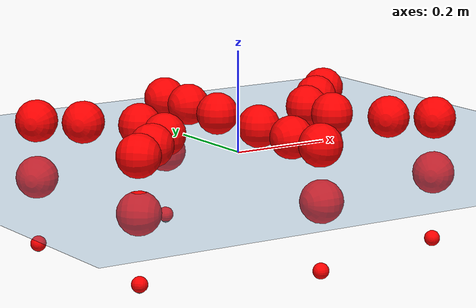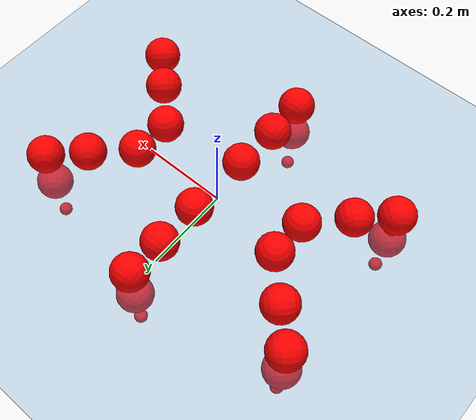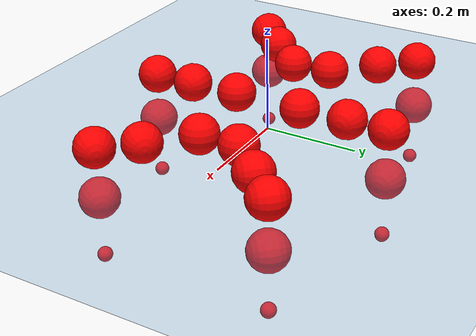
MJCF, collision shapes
<mujoco model="Golem">
  <compiler angle="radian" assetdir="assets" balanceinertia="true" inertiafromgeom="false"/>

  <option timestep="0.005" density="1.2" viscosity="2e-05"/>

  <size nkey="1"/>

  <visual>
    <quality shadowsize="8192"/>
    <map shadowclip="0.5"/>
  </visual>

  <default>
    <default class="/">
      <joint armature="0.01" damping="0.01" frictionloss="0.01"/>
      <geom contype="0" conaffinity="0" group="1" solref="-1000 -80"/>
      <site size="0.01 0.005 0.005" group="5"/>
      <general forcelimited="true" biastype="affine" gainprm="25" biasprm="0 -25 -0.5"/>
      <default class="visual">
        <geom type="mesh" group="2"/>
      </default>
      <default class="collision">
        <geom group="3"/>
      </default>
      <default class="foot">
        <geom size="0.01 0 0" condim="6" group="4" priority="1" solimp="0.015 1 0.01"/>
      </default>
      <default class="reward_collision_sphere">
        <geom group="5" rgba="1 0 0 1"/>
      </default>
    </default>
  </default>

  <asset>
    <texture type="skybox" colorspace="auto" name="//unnamed_texture_0" builtin="gradient" rgb1="0.95 0.95 0.95" rgb2="0.95 0.95 0.95" width="100" height="600"/>
    <texture type="2d" colorspace="auto" name="texplane" builtin="checker" rgb1="0.345 0.575 0.748" rgb2="0.345 0.575 0.748" markrgb="1 1 1" width="512" height="512"/>
    <material name="MatPlane" class="/" texture="texplane" texuniform="true" texrepeat="2 2" specular="0.9"/>
    <mesh name="body" class="/" file="body.stl" scale="0.001 0.001 0.001"/>
    <mesh name="coxa" class="/" file="coxa.stl" scale="0.001 0.001 0.001"/>
    <mesh name="femur" class="/" file="femur.stl" scale="0.001 0.001 0.001"/>
    <mesh name="tibia" class="/" file="tibia.stl" scale="0.001 0.001 0.001"/>
    <mesh name="tarsus" class="/" file="tarsus.stl" scale="0.001 0.001 0.001"/>
  </asset>

  <worldbody>
    <geom name="floor" class="/" size="100 100 0.125" type="plane" group="0" material="MatPlane"/>
    <light name="toplight_shadow" class="/" pos="0 0 5" dir="0.0990148 0.0990148 -0.990148" type="directional" ambient="0.04 0.04 0.04" diffuse="0.55 0.55 0.55" specular="0.12 0.12 0.12"/>
    <light name="toplight_fill" class="/" pos="0 0 5" dir="0.0990148 0.0990148 -0.990148" type="directional" castshadow="false" ambient="0.04 0.04 0.04" diffuse="0.3 0.3 0.3" specular="0.08 0.08 0.08"/>
    <body name="trunk" pos="-0.000808948 0.000222731 0.000213596" quat="1 -5.65389e-05 8.8983e-05 -0.000158883">
      <inertial pos="0.000541569 0.000921831 -0.00491129" quat="0.999934 0.00566496 0.00998478 0.000740894" mass="4.08273" diaginertia="0.029138 0.00433778 0.0110103"/>
      <joint name="//unnamed_joint_0" type="free"/>
      <geom name="//unnamed_geom_1" class="/" pos="0 0 0.0652636" quat="1 0 0 0" type="mesh" rgba="0.9 0.9 0.9 1" mesh="body"/>
      <site name="imu" class="/" pos="0.157956 0.00508652 0.10407" size="0.0103378"/>
      <camera name="track" class="/" pos="0 -1.69425 0" quat="0.707107 0.707107 0 0" mode="trackcom"/>
      <camera name="ego_camera" class="/" pos="0.16048 0 0.101974" quat="-0.5 -0.5 0.5 0.5"/>
      <body name="coxa_RR" pos="-0.219242 -0.068864 0.0643953" quat="0.382791 -0.000191609 -4.5874e-05 -0.923835">
        <inertial pos="0.000741717 -0.0001503 0.00098008" quat="0.999997 0.00145743 -0.00148836 0.00157449" mass="0.217902" diaginertia="0.0288937 0.00427341 0.0108422"/>
        <joint name="coxa_joint_RR" class="/" pos="0 0 0" axis="0.000613231 -0.0019901 -0.999998" range="-3.12613 3.18453" armature="0.0105533" damping="0.013133" frictionloss="0.0102894"/>
        <geom name="//unnamed_geom_2" class="/" type="mesh" rgba="0.2 0.2 0.2 1" mesh="coxa"/>
        <geom name="//unnamed_geom_3" class="reward_collision_sphere" size="0.0413511" pos="-0.0370338 0 0"/>
        <body name="femur_RR" pos="0.0730204 0.00245694 0.00190481" quat="0.500105 -0.499966 0.500007 0.499922">
          <inertial pos="0.000832578 0.00219321 0.00250058" quat="0.999994 -0.00138768 0.00165539 -0.00268315" mass="0.221068" diaginertia="0.029209 0.00432551 0.0113822"/>
          <joint name="femur_joint_RR" class="/" pos="0 0 0" axis="-0.0044644 0.0012512 -0.999989" range="-3.15056 3.14121" armature="0.00978972" damping="0.0087406" frictionloss="0.0116453"/>
          <geom name="//unnamed_geom_4" class="/" type="mesh" rgba="0.9 0.9 0.9 1" mesh="femur"/>
          <geom name="//unnamed_geom_5" class="reward_collision_sphere" size="0.0413511"/>
          <body name="tibia_RR" pos="0.000402023 -0.0897032 -0.00229822" quat="0.000126769 1 -0.000255416 0.000102589">
            <inertial pos="-4.84551e-05 -0.002235 0.000662145" quat="0.999998 0.000838701 -0.00152859 0.000240152" mass="0.219332" diaginertia="0.0288747 0.00436269 0.0110363"/>
            <joint name="tibia_joint_RR" class="/" pos="0 0 0" axis="0.00122409 -0.000514047 0.999999" range="-3.13898 3.14056" armature="0.0104809" damping="0.0168204" frictionloss="0.0100926"/>
            <geom name="//unnamed_geom_6" class="/" type="mesh" rgba="0.2 0.2 0.2 1" mesh="tibia"/>
            <geom name="//unnamed_geom_7" class="reward_collision_sphere" size="0.0413511"/>
            <body name="tarsus_RR" pos="0.105972 0.000672611 -1.46528e-05" quat="1 -0.000101154 -9.5029e-05 0.000120986">
              <inertial pos="0.0741999 0.00032159 -0.000393826" quat="0.500018 0.500097 0.499974 0.499911" mass="0.2258" diaginertia="0.0296525 0.00444718 0.0110399"/>
              <joint name="tarsus_joint_RR" class="/" pos="0 0 0" axis="-0.000215926 0.0035386 0.999994" range="-3.18949 3.18919" armature="0.0106073" damping="0" frictionloss="0.0104284"/>
              <geom name="//unnamed_geom_8" class="/" type="mesh" rgba="0.9 0.9 0.9 1" mesh="tarsus"/>
              <geom name="foot_1" class="foot" size="0.010627" pos="0.138259 0 0" quat="0 -0.707107 0 0.707107"/>
              <geom name="//unnamed_geom_10" class="reward_collision_sphere" size="0.0413511"/>
              <geom name="//unnamed_geom_11" class="reward_collision_sphere" size="0.0155066" pos="0.132704 0 0"/>
              <site name="foot_1" class="foot" pos="0.138259 0 0" quat="0 -0.707107 0 0.707107" size="0.0103378"/>
            </body>
          </body>
        </body>
      </body>
      <body name="coxa_RM" pos="-0.00239404 -0.113431 0.0648109" quat="0.706937 -8.4812e-05 -0.000143496 -0.707277">
        <inertial pos="0.000679841 -0.000107632 0.00110627" quat="0.999925 0.00248183 -0.000604815 -0.011965" mass="0.225001" diaginertia="0.0288984 0.00436219 0.0112408"/>
        <joint name="coxa_joint_RM" class="/" pos="0 0 0" axis="0.00287657 -0.00426027 -0.999987" stiffness="0.00033121" range="-3.12563 3.13161" armature="0.0102006" damping="0.00971841" frictionloss="0.0102995"/>
        <geom name="//unnamed_geom_12" class="/" type="mesh" rgba="0.2 0.2 0.2 1" mesh="coxa"/>
        <geom name="//unnamed_geom_13" class="reward_collision_sphere" size="0.0413511" pos="-0.0370338 0 0"/>
        <body name="femur_RM" pos="0.0728547 -0.000443265 -0.00258926" quat="0.499344 -0.500779 0.500187 0.49969">
          <inertial pos="-0.00236377 -0.000200909 -0.00252847" quat="0.999999 -0.000597143 -0.000758371 0.000798208" mass="0.225914" diaginertia="0.0286175 0.00436241 0.0109519"/>
          <joint name="femur_joint_RM" class="/" pos="0 0 0" axis="2.27207e-05 6.3611e-05 -1" range="-3.15901 3.18424" armature="0.00984975" damping="0.00949283" frictionloss="0.00926237"/>
          <geom name="//unnamed_geom_14" class="/" type="mesh" rgba="0.9 0.9 0.9 1" mesh="femur"/>
          <geom name="//unnamed_geom_15" class="reward_collision_sphere" size="0.0413511"/>
          <body name="tibia_RM" pos="-0.000884119 -0.0907835 0.00224999" quat="-7.4096e-05 1 -7.62791e-05 -0.000120562">
            <inertial pos="0.000251452 -0.00121634 -0.000391325" quat="1 -0.000137646 0.00047794 -0.000281643" mass="0.219982" diaginertia="0.0286562 0.00432264 0.0109166"/>
            <joint name="tibia_joint_RM" class="/" pos="0 0 0" axis="0.00895293 -0.00580027 0.999943" range="-3.1578 3.10013" armature="0.01056" damping="0" frictionloss="0.0100367"/>
            <geom name="//unnamed_geom_16" class="/" type="mesh" rgba="0.2 0.2 0.2 1" mesh="tibia"/>
            <geom name="//unnamed_geom_17" class="reward_collision_sphere" size="0.0413511"/>
            <body name="tarsus_RM" pos="0.106033 0.00195815 -0.00192731" quat="1 3.34109e-06 3.47e-05 -0.000114169">
              <inertial pos="0.0752862 0.000164983 0.00108017" quat="0.50518 0.496901 0.500099 0.497779" mass="0.217864" diaginertia="0.0284627 0.0043083 0.0105497"/>
              <joint name="tarsus_joint_RM" class="/" pos="0 0 0" axis="0.00387964 0.00151117 0.999991" range="-3.17927 3.09045" armature="0.0102396" damping="0.00189191" frictionloss="0.0108328"/>
              <geom name="//unnamed_geom_18" class="/" type="mesh" rgba="0.9 0.9 0.9 1" mesh="tarsus"/>
              <geom name="foot_2" class="foot" size="0.010007" pos="0.138259 0 0" quat="0 -0.707107 0 0.707107"/>
              <geom name="//unnamed_geom_20" class="reward_collision_sphere" size="0.0413511"/>
              <geom name="//unnamed_geom_21" class="reward_collision_sphere" size="0.0155066" pos="0.132704 0 0"/>
              <site name="foot_2" class="foot" pos="0.138259 0 0" quat="0 -0.707107 0 0.707107" size="0.0103378"/>
            </body>
          </body>
        </body>
      </body>
      <body name="coxa_RF" pos="0.217823 -0.0707234 0.0637468" quat="0.923904 -5.32279e-07 8.86011e-05 -0.382623">
        <inertial pos="-0.000748721 -0.00258748 -0.000384127" quat="0.999986 -0.00338162 -0.000242107 -0.00395224" mass="0.224133" diaginertia="0.0290832 0.0043354 0.0109472"/>
        <joint name="coxa_joint_RF" class="/" pos="0 0 0" axis="0.000220345 0.000243891 -1" range="-3.14028 3.15612" armature="0.0101704" damping="0" frictionloss="0.0105114"/>
        <geom name="//unnamed_geom_22" class="/" type="mesh" rgba="0.2 0.2 0.2 1" mesh="coxa"/>
        <geom name="//unnamed_geom_23" class="reward_collision_sphere" size="0.0413511" pos="-0.0370338 0 0"/>
        <body name="femur_RF" pos="0.0751919 -7.53211e-05 -0.00218186" quat="0.499911 -0.499929 0.50011 0.50005">
          <inertial pos="-3.96791e-05 3.92082e-05 0.00164528" quat="0.999987 -0.00413074 0.00100715 -0.00283471" mass="0.217442" diaginertia="0.0288331 0.00422205 0.0109576"/>
          <joint name="femur_joint_RF" class="/" pos="0 0 0" axis="9.14677e-05 -0.000328744 -1" range="-3.09444 3.1223" armature="0.0103264" damping="0.0081777" frictionloss="0.00972466"/>
          <geom name="//unnamed_geom_24" class="/" type="mesh" rgba="0.9 0.9 0.9 1" mesh="femur"/>
          <geom name="//unnamed_geom_25" class="reward_collision_sphere" size="0.0413511"/>
          <body name="tibia_RF" pos="-0.0022563 -0.09058 -0.00106085" quat="4.56245e-06 1 1.97085e-05 9.973e-06">
            <inertial pos="0.00105928 0.000478404 -0.000137328" quat="0.999925 -0.011659 -0.003352 -0.00168553" mass="0.227171" diaginertia="0.0282699 0.00436883 0.0111105"/>
            <joint name="tibia_joint_RF" class="/" pos="0 0 0" axis="0.000661262 0.00465517 0.999989" range="-3.13923 3.13619" armature="0.00997758" damping="0.00210954" frictionloss="0.0100759"/>
            <geom name="//unnamed_geom_26" class="/" type="mesh" rgba="0.2 0.2 0.2 1" mesh="tibia"/>
            <geom name="//unnamed_geom_27" class="reward_collision_sphere" size="0.0413511"/>
            <body name="tarsus_RF" pos="0.10984 -0.00098482 -0.00211782" quat="1 2.13025e-06 -4.17051e-05 -2.0622e-06">
              <inertial pos="0.0735458 -0.00197696 -0.000897241" quat="0.499913 0.499877 0.496427 0.503756" mass="0.213404" diaginertia="0.0285136 0.00425579 0.0109485"/>
              <joint name="tarsus_joint_RF" class="/" pos="0 0 0" axis="0.0065566 -0.00767242 0.999949" range="-3.16664 3.13937" armature="0.0103244" damping="0.0186387" frictionloss="0.010878"/>
              <geom name="//unnamed_geom_28" class="/" type="mesh" rgba="0.9 0.9 0.9 1" mesh="tarsus"/>
              <geom name="foot_3" class="foot" size="0.010147" pos="0.138259 0 0" quat="0 -0.707107 0 0.707107"/>
              <geom name="//unnamed_geom_30" class="reward_collision_sphere" size="0.0413511"/>
              <geom name="//unnamed_geom_31" class="reward_collision_sphere" size="0.0155066" pos="0.132704 0 0"/>
              <site name="foot_3" class="foot" pos="0.138259 0 0" quat="0 -0.707107 0 0.707107" size="0.0103378"/>
            </body>
          </body>
        </body>
      </body>
      <body name="coxa_LR" pos="-0.219145 0.0734351 0.0679391" quat="0.382554 0.000196509 -0.000372893 0.923933">
        <inertial pos="0.00054785 0.000378098 0.00252603" quat="0.999998 0.00165108 0.000222096 -0.00114484" mass="0.220968" diaginertia="0.0283573 0.00427877 0.0105681"/>
        <joint name="coxa_joint_LR" class="/" pos="0 0 0" axis="-0.000750893 0.000609783 -1" range="-3.13004 3.11981" armature="0.0107022" damping="0" frictionloss="0.00912563"/>
        <geom name="//unnamed_geom_32" class="/" type="mesh" rgba="0.2 0.2 0.2 1" mesh="coxa"/>
        <geom name="//unnamed_geom_33" class="reward_collision_sphere" size="0.0413511" pos="-0.0370338 0 0"/>
        <body name="femur_LR" pos="0.075209 -0.00276321 -0.000199964" quat="0.499779 -0.499925 0.499824 0.500472">
          <inertial pos="0.00193338 0.000414049 0.000964247" quat="0.999988 -0.00441956 -0.00114815 0.00170966" mass="0.214332" diaginertia="0.0285287 0.00438105 0.0110202"/>
          <joint name="femur_joint_LR" class="/" pos="0 0 0" axis="0.00278796 -0.00596367 0.999978" range="-3.19052 3.09452" armature="0.00915699" damping="0.00132545" frictionloss="0.0102917"/>
          <geom name="//unnamed_geom_34" class="/" type="mesh" rgba="0.9 0.9 0.9 1" mesh="femur"/>
          <geom name="//unnamed_geom_35" class="reward_collision_sphere" size="0.0413511"/>
          <body name="tibia_LR" pos="0.00138761 -0.093427 -0.000865789" quat="3.99333e-05 1 -9.40948e-05 6.64656e-05">
            <inertial pos="-0.000437808 -0.00180513 -0.000181009" quat="1 -1.63079e-06 1.8355e-05 1.51969e-05" mass="0.224431" diaginertia="0.0282718 0.00444883 0.0109291"/>
            <joint name="tibia_joint_LR" class="/" pos="0 0 0" axis="-0.0111258 0.0043934 -0.999928" range="-3.14199 3.10275" armature="0.0108674" damping="0" frictionloss="0.0101678"/>
            <geom name="//unnamed_geom_36" class="/" type="mesh" rgba="0.2 0.2 0.2 1" mesh="tibia"/>
            <geom name="//unnamed_geom_37" class="reward_collision_sphere" size="0.0413511"/>
            <body name="tarsus_LR" pos="0.111066 0.000977361 -0.00050486" quat="0.999999 0.000222364 -0.000971011 -0.000612988">
              <inertial pos="0.072927 -0.00119673 0.00131651" quat="0.499879 0.500159 0.500396 0.499566" mass="0.221516" diaginertia="0.028503 0.00422725 0.0109886"/>
              <joint name="tarsus_joint_LR" class="/" pos="0 0 0" axis="-0.000842589 -0.00194571 -0.999998" range="-3.14522 3.1508" armature="0.00996142" damping="0.0259894" frictionloss="0.0114072"/>
              <geom name="//unnamed_geom_38" class="/" type="mesh" rgba="0.9 0.9 0.9 1" mesh="tarsus"/>
              <geom name="foot_4" class="foot" size="0.0105427" pos="0.138259 0 0" quat="0.707107 0 -0.707107 0"/>
              <geom name="//unnamed_geom_40" class="reward_collision_sphere" size="0.0413511"/>
              <geom name="//unnamed_geom_41" class="reward_collision_sphere" size="0.0155066" pos="0.132704 0 0"/>
              <site name="foot_4" class="foot" pos="0.138259 0 0" quat="0.707107 0 -0.707107 0" size="0.0103378"/>
            </body>
          </body>
        </body>
      </body>
      <body name="coxa_LM" pos="0.000420018 0.111276 0.0644558" quat="0.707046 6.79155e-05 -0.000191159 0.707168">
        <inertial pos="0.00233079 0.000105586 -0.000362335" quat="0.999988 0.000131029 -0.00475238 0.00112443" mass="0.21587" diaginertia="0.0288609 0.00425357 0.0108889"/>
        <joint name="coxa_joint_LM" class="/" pos="0 0 0" axis="0.00226588 -0.00558872 -0.999982" range="-3.13519 3.1375" armature="0.0103994" damping="0" frictionloss="0.0101682"/>
        <geom name="//unnamed_geom_42" class="/" type="mesh" rgba="0.2 0.2 0.2 1" mesh="coxa"/>
        <geom name="//unnamed_geom_43" class="reward_collision_sphere" size="0.0413511" pos="-0.0370338 0 0"/>
        <body name="femur_LM" pos="0.0693872 0.000500564 0.0011211" quat="0.499779 -0.500056 0.500128 0.500038">
          <inertial pos="0.000407465 -5.92041e-05 2.56172e-05" quat="0.999987 0.00276182 -0.00425798 0.00110364" mass="0.226083" diaginertia="0.028049 0.00438267 0.0114112"/>
          <joint name="femur_joint_LM" class="/" pos="0 0 0" axis="0.0071371 -0.0130994 0.999889" range="-3.09441 3.14875" armature="0.010966" damping="0" frictionloss="0.0103115"/>
          <geom name="//unnamed_geom_44" class="/" type="mesh" rgba="0.9 0.9 0.9 1" mesh="femur"/>
          <geom name="//unnamed_geom_45" class="reward_collision_sphere" size="0.0413511"/>
          <body name="tibia_LM" pos="0.000291618 -0.0887396 0.000788517" quat="0.000209796 1 -0.000168101 6.17111e-05">
            <inertial pos="-0.0022776 -1.01135e-05 -0.000204907" quat="0.999987 0.00271319 0.00412175 0.0015684" mass="0.220743" diaginertia="0.0288161 0.00441616 0.0111208"/>
            <joint name="tibia_joint_LM" class="/" pos="0 0 0" axis="0.000171091 -0.00376679 -0.999993" stiffness="0.00177809" range="-3.16125 3.14987" armature="0.00984027" damping="0" frictionloss="0.00900999"/>
            <geom name="//unnamed_geom_46" class="/" type="mesh" rgba="0.2 0.2 0.2 1" mesh="tibia"/>
            <geom name="//unnamed_geom_47" class="reward_collision_sphere" size="0.0413511"/>
            <body name="tarsus_LM" pos="0.111361 8.82973e-05 0.000513347" quat="1 0.000343104 -4.88803e-05 0.000426644">
              <inertial pos="0.0726036 -0.000491593 -0.000429931" quat="0.495719 0.501441 0.495969 0.506789" mass="0.218801" diaginertia="0.028237 0.00436169 0.010892"/>
              <joint name="tarsus_joint_LM" class="/" pos="0 0 0" axis="-0.00810334 -0.000984583 -0.999967" stiffness="0.00260041" range="-3.11398 3.13823" armature="0.00982592" damping="0.00843067" frictionloss="0.0105486"/>
              <geom name="//unnamed_geom_48" class="/" type="mesh" rgba="0.9 0.9 0.9 1" mesh="tarsus"/>
              <geom name="foot_5" class="foot" size="0.0114285" pos="0.138259 0 0" quat="0.707107 0 -0.707107 0"/>
              <geom name="//unnamed_geom_50" class="reward_collision_sphere" size="0.0413511"/>
              <geom name="//unnamed_geom_51" class="reward_collision_sphere" size="0.0155066" pos="0.132704 0 0"/>
              <site name="foot_5" class="foot" pos="0.138259 0 0" quat="0.707107 0 -0.707107 0" size="0.0103378"/>
            </body>
          </body>
        </body>
      </body>
      <body name="coxa_LF" pos="0.21925 0.0713859 0.0639752" quat="0.923797 0.000180227 8.59644e-05 0.382882">
        <inertial pos="-9.80569e-05 -0.00237311 0.000513087" quat="0.999947 0.0102883 0.000295453 0.000711499" mass="0.225039" diaginertia="0.0294471 0.00454529 0.0114601"/>
        <joint name="coxa_joint_LF" class="/" pos="0 0 0" axis="0.00239903 -0.00141397 -0.999996" range="-3.11607 3.13481" armature="0.0102517" damping="0.00583646" frictionloss="0.00945077"/>
        <geom name="//unnamed_geom_52" class="/" type="mesh" rgba="0.2 0.2 0.2 1" mesh="coxa"/>
        <geom name="//unnamed_geom_53" class="reward_collision_sphere" size="0.0413511" pos="-0.0370338 0 0"/>
        <body name="femur_LF" pos="0.0709608 -5.00955e-05 0.00136033" quat="0.499901 -0.500095 0.500162 0.499841">
          <inertial pos="-0.000514988 0.000401385 -0.00200081" quat="0.99999 0.000883838 0.00432042 0.0012276" mass="0.22211" diaginertia="0.0283824 0.0043681 0.0108722"/>
          <joint name="femur_joint_LF" class="/" pos="0 0 0" axis="0.00373049 0.000845315 0.999993" range="-3.12489 3.14171" armature="0.0107246" damping="0.0034866" frictionloss="0.0101632"/>
          <geom name="//unnamed_geom_54" class="/" type="mesh" rgba="0.9 0.9 0.9 1" mesh="femur"/>
          <geom name="//unnamed_geom_55" class="reward_collision_sphere" size="0.0413511"/>
          <body name="tibia_LF" pos="0.000106254 -0.0921227 0.000221561" quat="-0.000104639 1 -6.53418e-05 -0.000292611">
            <inertial pos="0.00225639 0.00246589 0.00251345" quat="0.999987 0.00118102 0.00494421 0.000266356" mass="0.221497" diaginertia="0.02895 0.00440406 0.0114098"/>
            <joint name="tibia_joint_LF" class="/" pos="0 0 0" axis="0.00587085 -0.000445774 -0.999983" range="-3.12307 3.0931" armature="0.0107064" damping="0" frictionloss="0.0100553"/>
            <geom name="//unnamed_geom_56" class="/" type="mesh" rgba="0.2 0.2 0.2 1" mesh="tibia"/>
            <geom name="//unnamed_geom_57" class="reward_collision_sphere" size="0.0413511"/>
            <body name="tarsus_LF" pos="0.10912 0.000896422 -0.000950283" quat="1 0.000102267 3.73834e-05 0.000102516">
              <inertial pos="0.0739666 0.0010117 0.00222059" quat="0.498417 0.497781 0.507221 0.496508" mass="0.221927" diaginertia="0.0295132 0.00437438 0.0114159"/>
              <joint name="tarsus_joint_LF" class="/" pos="0 0 0" axis="-4.94725e-05 0.000360366 -1" range="-3.17561 3.09085" armature="0.0103489" damping="0.0168358" frictionloss="0.0103656"/>
              <geom name="//unnamed_geom_58" class="/" type="mesh" rgba="0.9 0.9 0.9 1" mesh="tarsus"/>
              <geom name="foot_6" class="foot" size="0.0105242" pos="0.138259 0 0" quat="0.707107 0 -0.707107 0"/>
              <geom name="//unnamed_geom_60" class="reward_collision_sphere" size="0.0413511"/>
              <geom name="//unnamed_geom_61" class="reward_collision_sphere" size="0.0155066" pos="0.132704 0 0"/>
              <site name="foot_6" class="foot" pos="0.138259 0 0" quat="0.707107 0 -0.707107 0" size="0.0103378"/>
            </body>
          </body>
        </body>
      </body>
    </body>
  </worldbody>

  <contact>
    <pair class="/" geom1="floor" geom2="foot_1" name="//unnamed_contact_0"/>
    <pair class="/" geom1="floor" geom2="foot_2" name="//unnamed_contact_1"/>
    <pair class="/" geom1="floor" geom2="foot_3" name="//unnamed_contact_2"/>
    <pair class="/" geom1="floor" geom2="foot_4" name="//unnamed_contact_3"/>
    <pair class="/" geom1="floor" geom2="foot_5" name="//unnamed_contact_4"/>
    <pair class="/" geom1="floor" geom2="foot_6" name="//unnamed_contact_5"/>
  </contact>

  <actuator>
    <general name="coxa_joint_RR" class="/" joint="coxa_joint_RR" forcerange="-7.78631 7.78631" gainprm="26.1518" biasprm="0 -26.1518 -0.537104"/>
    <general name="femur_joint_RR" class="/" joint="femur_joint_RR" forcerange="-7.47566 7.47566" gainprm="26.1518" biasprm="0 -26.1518 -0.537104"/>
    <general name="tibia_joint_RR" class="/" joint="tibia_joint_RR" forcerange="-7.54479 7.54479" gainprm="26.1518" biasprm="0 -26.1518 -0.537104"/>
    <general name="tarsus_joint_RR" class="/" joint="tarsus_joint_RR" forcerange="-7.68243 7.68243" gainprm="26.1518" biasprm="0 -26.1518 -0.537104"/>
    <general name="coxa_joint_RM" class="/" joint="coxa_joint_RM" forcerange="-7.40282 7.40282" gainprm="26.1518" biasprm="0 -26.1518 -0.537104"/>
    <general name="femur_joint_RM" class="/" joint="femur_joint_RM" forcerange="-7.47887 7.47887" gainprm="26.1518" biasprm="0 -26.1518 -0.537104"/>
    <general name="tibia_joint_RM" class="/" joint="tibia_joint_RM" forcerange="-7.50762 7.50762" gainprm="26.1518" biasprm="0 -26.1518 -0.537104"/>
    <general name="tarsus_joint_RM" class="/" joint="tarsus_joint_RM" forcerange="-7.18317 7.18317" gainprm="26.1518" biasprm="0 -26.1518 -0.537104"/>
    <general name="coxa_joint_RF" class="/" joint="coxa_joint_RF" forcerange="-7.39566 7.39566" gainprm="26.1518" biasprm="0 -26.1518 -0.537104"/>
    <general name="femur_joint_RF" class="/" joint="femur_joint_RF" forcerange="-7.57068 7.57068" gainprm="26.1518" biasprm="0 -26.1518 -0.537104"/>
    <general name="tibia_joint_RF" class="/" joint="tibia_joint_RF" forcerange="-7.50515 7.50515" gainprm="26.1518" biasprm="0 -26.1518 -0.537104"/>
    <general name="tarsus_joint_RF" class="/" joint="tarsus_joint_RF" forcerange="-7.81166 7.81166" gainprm="26.1518" biasprm="0 -26.1518 -0.537104"/>
    <general name="coxa_joint_LR" class="/" joint="coxa_joint_LR" forcerange="-7.82751 7.82751" gainprm="26.1518" biasprm="0 -26.1518 -0.537104"/>
    <general name="femur_joint_LR" class="/" joint="femur_joint_LR" forcerange="-7.0213 7.0213" gainprm="26.1518" biasprm="0 -26.1518 -0.537104"/>
    <general name="tibia_joint_LR" class="/" joint="tibia_joint_LR" forcerange="-7.46989 7.46989" gainprm="26.1518" biasprm="0 -26.1518 -0.537104"/>
    <general name="tarsus_joint_LR" class="/" joint="tarsus_joint_LR" forcerange="-7.54036 7.54036" gainprm="26.1518" biasprm="0 -26.1518 -0.537104"/>
    <general name="coxa_joint_LM" class="/" joint="coxa_joint_LM" forcerange="-7.57561 7.57561" gainprm="26.1518" biasprm="0 -26.1518 -0.537104"/>
    <general name="femur_joint_LM" class="/" joint="femur_joint_LM" forcerange="-7.66506 7.66506" gainprm="26.1518" biasprm="0 -26.1518 -0.537104"/>
    <general name="tibia_joint_LM" class="/" joint="tibia_joint_LM" forcerange="-7.53341 7.53341" gainprm="26.1518" biasprm="0 -26.1518 -0.537104"/>
    <general name="tarsus_joint_LM" class="/" joint="tarsus_joint_LM" forcerange="-7.5949 7.5949" gainprm="26.1518" biasprm="0 -26.1518 -0.537104"/>
    <general name="coxa_joint_LF" class="/" joint="coxa_joint_LF" forcerange="-7.84283 7.84283" gainprm="26.1518" biasprm="0 -26.1518 -0.537104"/>
    <general name="femur_joint_LF" class="/" joint="femur_joint_LF" forcerange="-7.85905 7.85905" gainprm="26.1518" biasprm="0 -26.1518 -0.537104"/>
    <general name="tibia_joint_LF" class="/" joint="tibia_joint_LF" forcerange="-7.51605 7.51605" gainprm="26.1518" biasprm="0 -26.1518 -0.537104"/>
    <general name="tarsus_joint_LF" class="/" joint="tarsus_joint_LF" forcerange="-6.82059 6.82059" gainprm="26.1518" biasprm="0 -26.1518 -0.537104"/>
  </actuator>

  <sensor>
    <gyro site="imu" name="imu_angular_velocity"/>
    <velocimeter site="imu" name="imu_linear_velocity"/>
    <framelinvel objtype="site" objname="foot_1" name="foot_1_global_linear_velocity"/>
    <framelinvel objtype="site" objname="foot_2" name="foot_2_global_linear_velocity"/>
    <framelinvel objtype="site" objname="foot_3" name="foot_3_global_linear_velocity"/>
    <framelinvel objtype="site" objname="foot_4" name="foot_4_global_linear_velocity"/>
    <framelinvel objtype="site" objname="foot_5" name="foot_5_global_linear_velocity"/>
    <framelinvel objtype="site" objname="foot_6" name="foot_6_global_linear_velocity"/>
  </sensor>

  <keyframe>
    <key name="home" qpos="0 0 0.1457 1 0 0 0 0 0 0 0 0 0 0 0 0 0 0 0 0 0 0 0 0 0 0 0 0 0 0 0"/>
  </keyframe>
</mujoco>
